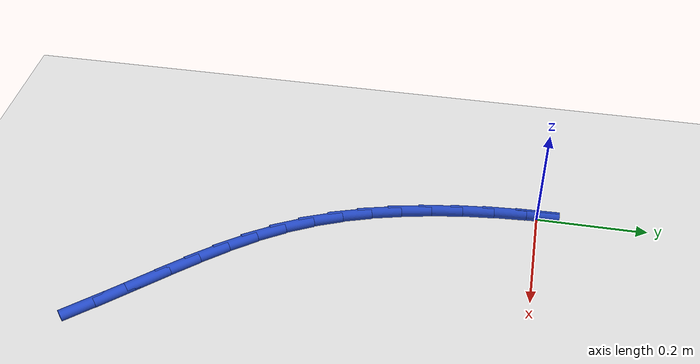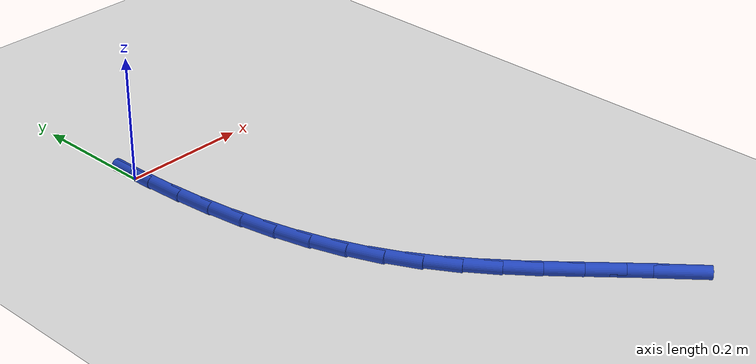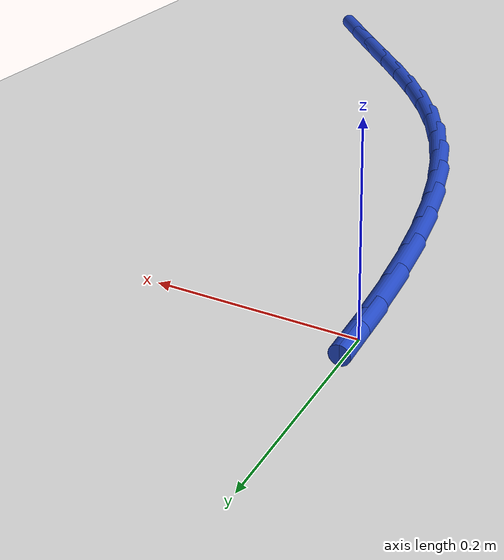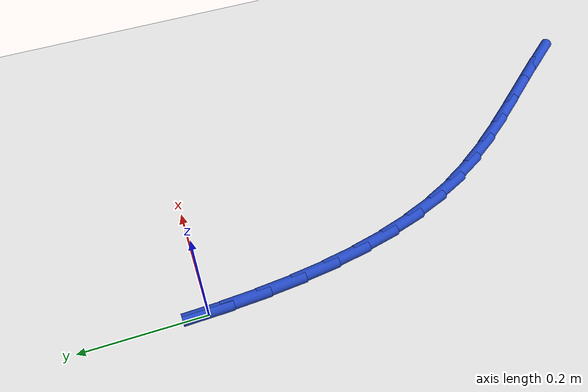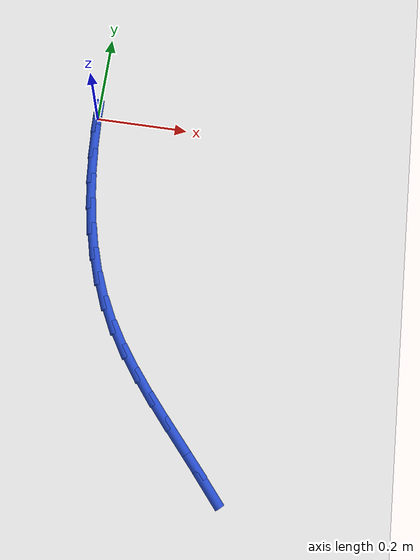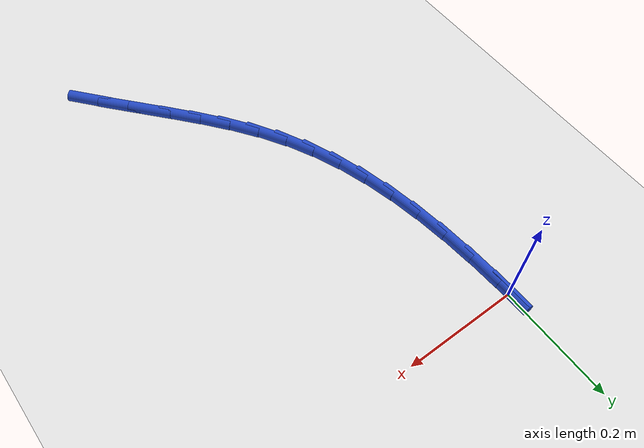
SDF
<sdf version="1.6">
 <world name="default">
  <model name="ground_plane">
   <static>1</static>
   <link name="link">
    <collision name="collision">
     <geometry><plane><normal>0 0 1</normal><size>100 100</size></plane></geometry>
     <surface><friction><ode><mu>100</mu><mu2>50</mu2></ode></friction></surface>
    </collision>
    <visual name="visual">
     <cast_shadows>0</cast_shadows>
     <geometry><plane><normal>0 0 1</normal><size>100 100</size></plane></geometry>
     <material>
      <script><uri>file://media/materials/scripts/gazebo.material</uri><name>Gazebo/WhiteGlow</name></script>
     </material>
    </visual>
   </link>
  </model>
  <model name="line">
   <link name="link_0">
    <pose>-1.0842021724855044e-17 -2.7755575615628914e-17 0.01 0 1.57 -1.546820665249024</pose>
    <collision name="collision">
     <geometry><cylinder><radius>0.01</radius><length>0.08</length></cylinder></geometry>
    </collision>
    <visual name="visual">
     <material>
      <script><name>Gazebo/Blue</name><uri>file://media/materials/scripts/gazebo.material</uri></script>
     </material>
     <geometry><cylinder><radius>0.01</radius><length>0.08</length></cylinder></geometry>
    </visual>
   </link>
   <link name="link_125">
    <pose>0.34160029151496346 -0.7385609581498042 0.01 0 1.57 -0.8623200498463744</pose>
    <collision name="collision">
     <geometry><cylinder><radius>0.01</radius><length>0.08</length></cylinder></geometry>
    </collision>
    <visual name="visual">
     <material>
      <script><name>Gazebo/Blue</name><uri>file://media/materials/scripts/gazebo.material</uri></script>
     </material>
     <geometry><cylinder><radius>0.01</radius><length>0.08</length></cylinder></geometry>
    </visual>
   </link>
   <link name="link_126">
    <pose>0.3036276906365006 -0.6942461399071403 0.01 0 1.57 -0.8465107329558337</pose>
    <collision name="collision">
     <geometry><cylinder><radius>0.01</radius><length>0.08</length></cylinder></geometry>
    </collision>
    <visual name="visual">
     <material>
      <script><name>Gazebo/Blue</name><uri>file://media/materials/scripts/gazebo.material</uri></script>
     </material>
     <geometry><cylinder><radius>0.01</radius><length>0.08</length></cylinder></geometry>
    </visual>
   </link>
   <link name="link_127">
    <pose>0.2656681900602973 -0.651338477639755 0.01 0 1.57 -0.846737833489728</pose>
    <collision name="collision">
     <geometry><cylinder><radius>0.01</radius><length>0.08</length></cylinder></geometry>
    </collision>
    <visual name="visual">
     <material>
      <script><name>Gazebo/Blue</name><uri>file://media/materials/scripts/gazebo.material</uri></script>
     </material>
     <geometry><cylinder><radius>0.01</radius><length>0.08</length></cylinder></geometry>
    </visual>
   </link>
   <link name="link_128">
    <pose>0.22840180571810206 -0.6091950002658245 0.01 0 1.57 -0.8638987861911345</pose>
    <collision name="collision">
     <geometry><cylinder><radius>0.01</radius><length>0.08</length></cylinder></geometry>
    </collision>
    <visual name="visual">
     <material>
      <script><name>Gazebo/Blue</name><uri>file://media/materials/scripts/gazebo.material</uri></script>
     </material>
     <geometry><cylinder><radius>0.01</radius><length>0.08</length></cylinder></geometry>
    </visual>
   </link>
   <link name="link_129">
    <pose>0.19250855354166346 -0.5671727367035254 0.01 0 1.57 -0.898858070511915</pose>
    <collision name="collision">
     <geometry><cylinder><radius>0.01</radius><length>0.08</length></cylinder></geometry>
    </collision>
    <visual name="visual">
     <material>
      <script><name>Gazebo/Blue</name><uri>file://media/materials/scripts/gazebo.material</uri></script>
     </material>
     <geometry><cylinder><radius>0.01</radius><length>0.08</length></cylinder></geometry>
    </visual>
   </link>
   <link name="link_130">
    <pose>0.1586684494627305 -0.524628715871035 0.01 0 1.57 -0.952269856576985</pose>
    <collision name="collision">
     <geometry><cylinder><radius>0.01</radius><length>0.08</length></cylinder></geometry>
    </collision>
    <visual name="visual">
     <material>
      <script><name>Gazebo/Blue</name><uri>file://media/materials/scripts/gazebo.material</uri></script>
     </material>
     <geometry><cylinder><radius>0.01</radius><length>0.08</length></cylinder></geometry>
    </visual>
   </link>
   <link name="link_131">
    <pose>0.1275615094130515 -0.4809199666865292 0.01 0 1.57 -1.0241983407358295</pose>
    <collision name="collision">
     <geometry><cylinder><radius>0.01</radius><length>0.08</length></cylinder></geometry>
    </collision>
    <visual name="visual">
     <material>
      <script><name>Gazebo/Blue</name><uri>file://media/materials/scripts/gazebo.material</uri></script>
     </material>
     <geometry><cylinder><radius>0.01</radius><length>0.08</length></cylinder></geometry>
    </visual>
   </link>
   <link name="link_132">
    <pose>0.09986774932437624 -0.4354035180681862 0.01 0 1.57 -1.1100165792726688</pose>
    <collision name="collision">
     <geometry><cylinder><radius>0.01</radius><length>0.08</length></cylinder></geometry>
    </collision>
    <visual name="visual">
     <material>
      <script><name>Gazebo/Blue</name><uri>file://media/materials/scripts/gazebo.material</uri></script>
     </material>
     <geometry><cylinder><radius>0.01</radius><length>0.08</length></cylinder></geometry>
    </visual>
   </link>
   <link name="link_133">
    <pose>0.07611896282810232 -0.3875634384638266 0.01 0 1.57 -1.1923890533321344</pose>
    <collision name="collision">
     <geometry><cylinder><radius>0.01</radius><length>0.08</length></cylinder></geometry>
    </collision>
    <visual name="visual">
     <material>
      <script><name>Gazebo/Blue</name><uri>file://media/materials/scripts/gazebo.material</uri></script>
     </material>
     <geometry><cylinder><radius>0.01</radius><length>0.08</length></cylinder></geometry>
    </visual>
   </link>
   <link name="link_134">
    <pose>0.056193176574509035 -0.33744413204390966 0.01 0 1.57 -1.266297036769836</pose>
    <collision name="collision">
     <geometry><cylinder><radius>0.01</radius><length>0.08</length></cylinder></geometry>
    </collision>
    <visual name="visual">
     <material>
      <script><name>Gazebo/Blue</name><uri>file://media/materials/scripts/gazebo.material</uri></script>
     </material>
     <geometry><cylinder><radius>0.01</radius><length>0.08</length></cylinder></geometry>
    </visual>
   </link>
   <link name="link_135">
    <pose>0.03978822509293754 -0.2852444434526645 0.01 0 1.57 -1.331638970055523</pose>
    <collision name="collision">
     <geometry><cylinder><radius>0.01</radius><length>0.08</length></cylinder></geometry>
    </collision>
    <visual name="visual">
     <material>
      <script><name>Gazebo/Blue</name><uri>file://media/materials/scripts/gazebo.material</uri></script>
     </material>
     <geometry><cylinder><radius>0.01</radius><length>0.08</length></cylinder></geometry>
    </visual>
   </link>
   <link name="link_136">
    <pose>0.02660193726151946 -0.231163222177906 0.01 0 1.57 -1.3886714272668657</pose>
    <collision name="collision">
     <geometry><cylinder><radius>0.01</radius><length>0.08</length></cylinder></geometry>
    </collision>
    <visual name="visual">
     <material>
      <script><name>Gazebo/Blue</name><uri>file://media/materials/scripts/gazebo.material</uri></script>
     </material>
     <geometry><cylinder><radius>0.01</radius><length>0.08</length></cylinder></geometry>
    </visual>
   </link>
   <link name="link_137">
    <pose>0.016332141958385574 -0.17539931770744696 0.01 0 1.57 -1.437859643845488</pose>
    <collision name="collision">
     <geometry><cylinder><radius>0.01</radius><length>0.08</length></cylinder></geometry>
    </collision>
    <visual name="visual">
     <material>
      <script><name>Gazebo/Blue</name><uri>file://media/materials/scripts/gazebo.material</uri></script>
     </material>
     <geometry><cylinder><radius>0.01</radius><length>0.08</length></cylinder></geometry>
    </visual>
   </link>
   <link name="link_138">
    <pose>0.008676668061666979 -0.11815157952910077 0.01 0 1.57 -1.4797608448686193</pose>
    <collision name="collision">
     <geometry><cylinder><radius>0.01</radius><length>0.08</length></cylinder></geometry>
    </collision>
    <visual name="visual">
     <material>
      <script><name>Gazebo/Blue</name><uri>file://media/materials/scripts/gazebo.material</uri></script>
     </material>
     <geometry><cylinder><radius>0.01</radius><length>0.08</length></cylinder></geometry>
    </visual>
   </link>
   <link name="link_139">
    <pose>0.003333344449494765 -0.05961885713068093 0.01 0 1.57 -1.5149435692597508</pose>
    <collision name="collision">
     <geometry><cylinder><radius>0.01</radius><length>0.08</length></cylinder></geometry>
    </collision>
    <visual name="visual">
     <material>
      <script><name>Gazebo/Blue</name><uri>file://media/materials/scripts/gazebo.material</uri></script>
     </material>
     <geometry><cylinder><radius>0.01</radius><length>0.08</length></cylinder></geometry>
    </visual>
   </link>
   <link name="link_140">
    <pose>-2.211772431870429e-17 6.938893903907228e-17 0.01 0 1.57 -1.5439371447303434</pose>
    <collision name="collision">
     <geometry><cylinder><radius>0.01</radius><length>0.08</length></cylinder></geometry>
    </collision>
    <visual name="visual">
     <material>
      <script><name>Gazebo/Blue</name><uri>file://media/materials/scripts/gazebo.material</uri></script>
     </material>
     <geometry><cylinder><radius>0.01</radius><length>0.08</length></cylinder></geometry>
    </visual>
   </link>
  </model>
 </world>
</sdf>
